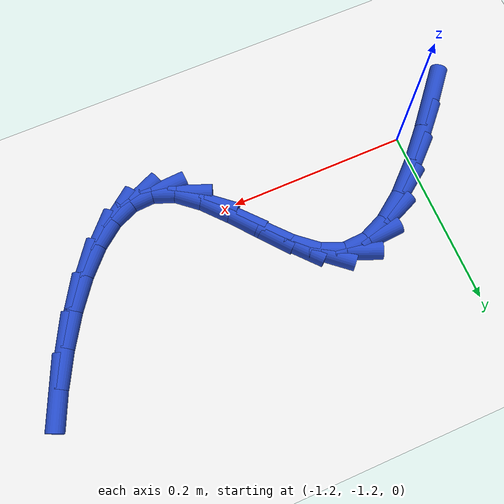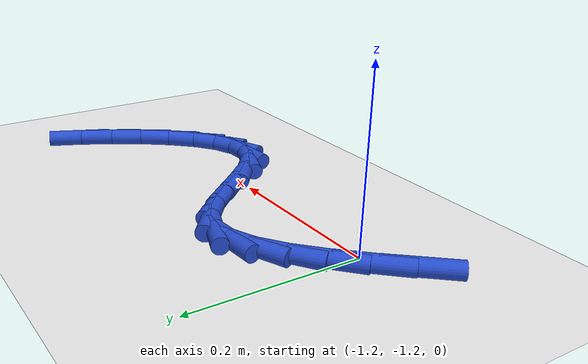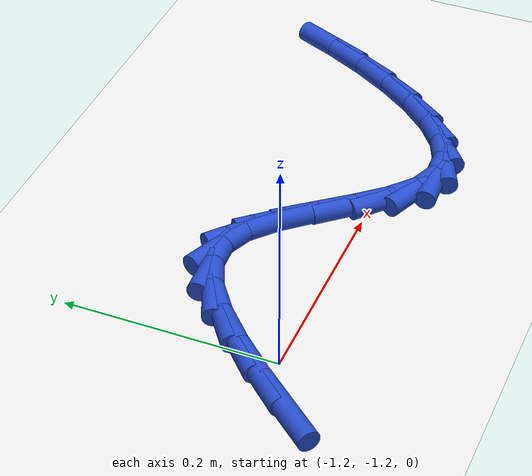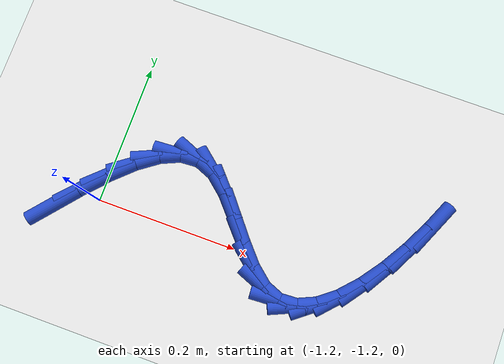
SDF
<sdf version="1.6">
 <world name="default">
  <model name="ground_plane">
   <static>1</static>
   <link name="link">
    <collision name="collision">
     <geometry><plane><normal>0 0 1</normal><size>100 100</size></plane></geometry>
     <surface><friction><ode><mu>100</mu><mu2>50</mu2></ode></friction></surface>
    </collision>
    <visual name="visual">
     <cast_shadows>0</cast_shadows>
     <geometry><plane><normal>0 0 1</normal><size>100 100</size></plane></geometry>
     <material>
      <script><uri>file://media/materials/scripts/gazebo.material</uri><name>Gazebo/WhiteGlow</name></script>
     </material>
    </visual>
   </link>
  </model>
  <model name="line">
   <link name="link_187">
    <pose>-1.2557655896012074 -1.2276968461485744 0.01 0 1.57 0.8730166356798045</pose>
    <collision name="collision">
     <geometry><cylinder><radius>0.01</radius><length>0.08</length></cylinder></geometry>
    </collision>
    <visual name="visual">
     <material>
      <script><name>Gazebo/Blue</name><uri>file://media/materials/scripts/gazebo.material</uri></script>
     </material>
     <geometry><cylinder><radius>0.01</radius><length>0.08</length></cylinder></geometry>
    </visual>
   </link>
   <link name="link_188">
    <pose>-1.2271237112216244 -1.1935383726911895 0.01 0 1.57 0.831199033700139</pose>
    <collision name="collision">
     <geometry><cylinder><radius>0.01</radius><length>0.08</length></cylinder></geometry>
    </collision>
    <visual name="visual">
     <material>
      <script><name>Gazebo/Blue</name><uri>file://media/materials/scripts/gazebo.material</uri></script>
     </material>
     <geometry><cylinder><radius>0.01</radius><length>0.08</length></cylinder></geometry>
    </visual>
   </link>
   <link name="link_189">
    <pose>-1.1983691687812712 -1.1620214110453029 0.01 0 1.57 0.7556224815977594</pose>
    <collision name="collision">
     <geometry><cylinder><radius>0.01</radius><length>0.08</length></cylinder></geometry>
    </collision>
    <visual name="visual">
     <material>
      <script><name>Gazebo/Blue</name><uri>file://media/materials/scripts/gazebo.material</uri></script>
     </material>
     <geometry><cylinder><radius>0.01</radius><length>0.08</length></cylinder></geometry>
    </visual>
   </link>
   <link name="link_190">
    <pose>-1.1697662785064162 -1.1350730851108615 0.01 0 1.57 0.6277045178378027</pose>
    <collision name="collision">
     <geometry><cylinder><radius>0.01</radius><length>0.08</length></cylinder></geometry>
    </collision>
    <visual name="visual">
     <material>
      <script><name>Gazebo/Blue</name><uri>file://media/materials/scripts/gazebo.material</uri></script>
     </material>
     <geometry><cylinder><radius>0.01</radius><length>0.08</length></cylinder></geometry>
    </visual>
   </link>
   <link name="link_191">
    <pose>-1.1415793566233277 -1.1146205187878109 0.01 0 1.57 0.4122740045180698</pose>
    <collision name="collision">
     <geometry><cylinder><radius>0.01</radius><length>0.08</length></cylinder></geometry>
    </collision>
    <visual name="visual">
     <material>
      <script><name>Gazebo/Blue</name><uri>file://media/materials/scripts/gazebo.material</uri></script>
     </material>
     <geometry><cylinder><radius>0.01</radius><length>0.08</length></cylinder></geometry>
    </visual>
   </link>
   <link name="link_192">
    <pose>-1.1140727193582745 -1.1025908359760979 0.01 0 1.57 0.06315185491303896</pose>
    <collision name="collision">
     <geometry><cylinder><radius>0.01</radius><length>0.08</length></cylinder></geometry>
    </collision>
    <visual name="visual">
     <material>
      <script><name>Gazebo/Blue</name><uri>file://media/materials/scripts/gazebo.material</uri></script>
     </material>
     <geometry><cylinder><radius>0.01</radius><length>0.08</length></cylinder></geometry>
    </visual>
   </link>
   <link name="link_193">
    <pose>-1.0875106829375256 -1.1009111605756694 0.01 0 1.57 -0.3871954931710761</pose>
    <collision name="collision">
     <geometry><cylinder><radius>0.01</radius><length>0.08</length></cylinder></geometry>
    </collision>
    <visual name="visual">
     <material>
      <script><name>Gazebo/Blue</name><uri>file://media/materials/scripts/gazebo.material</uri></script>
     </material>
     <geometry><cylinder><radius>0.01</radius><length>0.08</length></cylinder></geometry>
    </visual>
   </link>
   <link name="link_194">
    <pose>-1.0621319540510896 -1.1112601064582175 0.01 0 1.57 -0.704779340631886</pose>
    <collision name="collision">
     <geometry><cylinder><radius>0.01</radius><length>0.08</length></cylinder></geometry>
    </collision>
    <visual name="visual">
     <material>
      <script><name>Gazebo/Blue</name><uri>file://media/materials/scripts/gazebo.material</uri></script>
     </material>
     <geometry><cylinder><radius>0.01</radius><length>0.08</length></cylinder></geometry>
    </visual>
   </link>
   <link name="link_195">
    <pose>-1.0378264527559897 -1.1319317289019815 0.01 0 1.57 -0.8497348156527421</pose>
    <collision name="collision">
     <geometry><cylinder><radius>0.01</radius><length>0.08</length></cylinder></geometry>
    </collision>
    <visual name="visual">
     <material>
      <script><name>Gazebo/Blue</name><uri>file://media/materials/scripts/gazebo.material</uri></script>
     </material>
     <geometry><cylinder><radius>0.01</radius><length>0.08</length></cylinder></geometry>
    </visual>
   </link>
   <link name="link_196">
    <pose>-1.0142321793407136 -1.1587755020665271 0.01 0 1.57 -0.8918007354624372</pose>
    <collision name="collision">
     <geometry><cylinder><radius>0.01</radius><length>0.08</length></cylinder></geometry>
    </collision>
    <visual name="visual">
     <material>
      <script><name>Gazebo/Blue</name><uri>file://media/materials/scripts/gazebo.material</uri></script>
     </material>
     <geometry><cylinder><radius>0.01</radius><length>0.08</length></cylinder></geometry>
    </visual>
   </link>
   <link name="link_197">
    <pose>-0.9909815430755511 -1.1875866459431 0.01 0 1.57 -0.8514854459162908</pose>
    <collision name="collision">
     <geometry><cylinder><radius>0.01</radius><length>0.08</length></cylinder></geometry>
    </collision>
    <visual name="visual">
     <material>
      <script><name>Gazebo/Blue</name><uri>file://media/materials/scripts/gazebo.material</uri></script>
     </material>
     <geometry><cylinder><radius>0.01</radius><length>0.08</length></cylinder></geometry>
    </visual>
   </link>
   <link name="link_198">
    <pose>-0.9677069532307909 -1.2141603805229457 0.01 0 1.57 -0.7048700332051223</pose>
    <collision name="collision">
     <geometry><cylinder><radius>0.01</radius><length>0.08</length></cylinder></geometry>
    </collision>
    <visual name="visual">
     <material>
      <script><name>Gazebo/Blue</name><uri>file://media/materials/scripts/gazebo.material</uri></script>
     </material>
     <geometry><cylinder><radius>0.01</radius><length>0.08</length></cylinder></geometry>
    </visual>
   </link>
   <link name="link_199">
    <pose>-0.9440408190767222 -1.234291925797309 0.01 0 1.57 -0.38018458107672337</pose>
    <collision name="collision">
     <geometry><cylinder><radius>0.01</radius><length>0.08</length></cylinder></geometry>
    </collision>
    <visual name="visual">
     <material>
      <script><name>Gazebo/Blue</name><uri>file://media/materials/scripts/gazebo.material</uri></script>
     </material>
     <geometry><cylinder><radius>0.01</radius><length>0.08</length></cylinder></geometry>
    </visual>
   </link>
   <link name="link_200">
    <pose>-0.9196523574689253 -1.244038207803888 0.01 0 1.57 0.05534752964600647</pose>
    <collision name="collision">
     <geometry><cylinder><radius>0.01</radius><length>0.08</length></cylinder></geometry>
    </collision>
    <visual name="visual">
     <material>
      <script><name>Gazebo/Blue</name><uri>file://media/materials/scripts/gazebo.material</uri></script>
     </material>
     <geometry><cylinder><radius>0.01</radius><length>0.08</length></cylinder></geometry>
    </visual>
   </link>
   <link name="link_201">
    <pose>-0.8946604831905707 -1.2426535551210358 0.01 0 1.57 0.4160059773773739</pose>
    <collision name="collision">
     <geometry><cylinder><radius>0.01</radius><length>0.08</length></cylinder></geometry>
    </collision>
    <visual name="visual">
     <material>
      <script><name>Gazebo/Blue</name><uri>file://media/materials/scripts/gazebo.material</uri></script>
     </material>
     <geometry><cylinder><radius>0.01</radius><length>0.08</length></cylinder></geometry>
    </visual>
   </link>
   <link name="link_202">
    <pose>-0.8694849422562931 -1.2315312400152674 0.01 0 1.57 0.6619024191560893</pose>
    <collision name="collision">
     <geometry><cylinder><radius>0.01</radius><length>0.08</length></cylinder></geometry>
    </collision>
    <visual name="visual">
     <material>
      <script><name>Gazebo/Blue</name><uri>file://media/materials/scripts/gazebo.material</uri></script>
     </material>
     <geometry><cylinder><radius>0.01</radius><length>0.08</length></cylinder></geometry>
    </visual>
   </link>
   <link name="link_203">
    <pose>-0.8445509981181731 -1.2121037643501695 0.01 0 1.57 0.8255814317530901</pose>
    <collision name="collision">
     <geometry><cylinder><radius>0.01</radius><length>0.08</length></cylinder></geometry>
    </collision>
    <visual name="visual">
     <material>
      <script><name>Gazebo/Blue</name><uri>file://media/materials/scripts/gazebo.material</uri></script>
     </material>
     <geometry><cylinder><radius>0.01</radius><length>0.08</length></cylinder></geometry>
    </visual>
   </link>
   <link name="link_204">
    <pose>-0.8202839142282903 -1.185803629989328 0.01 0 1.57 0.9401251087404174</pose>
    <collision name="collision">
     <geometry><cylinder><radius>0.01</radius><length>0.08</length></cylinder></geometry>
    </collision>
    <visual name="visual">
     <material>
      <script><name>Gazebo/Blue</name><uri>file://media/materials/scripts/gazebo.material</uri></script>
     </material>
     <geometry><cylinder><radius>0.01</radius><length>0.08</length></cylinder></geometry>
    </visual>
   </link>
   <link name="link_205">
    <pose>-0.797108954038724 -1.1540633387963297 0.01 0 1.57 1.0260930063291318</pose>
    <collision name="collision">
     <geometry><cylinder><radius>0.01</radius><length>0.08</length></cylinder></geometry>
    </collision>
    <visual name="visual">
     <material>
      <script><name>Gazebo/Blue</name><uri>file://media/materials/scripts/gazebo.material</uri></script>
     </material>
     <geometry><cylinder><radius>0.01</radius><length>0.08</length></cylinder></geometry>
    </visual>
   </link>
   <link name="link_206">
    <pose>-0.7754513810015548 -1.1183153926347613 0.01 0 1.57 1.0956638271411263</pose>
    <collision name="collision">
     <geometry><cylinder><radius>0.01</radius><length>0.08</length></cylinder></geometry>
    </collision>
    <visual name="visual">
     <material>
      <script><name>Gazebo/Blue</name><uri>file://media/materials/scripts/gazebo.material</uri></script>
     </material>
     <geometry><cylinder><radius>0.01</radius><length>0.08</length></cylinder></geometry>
    </visual>
   </link>
   <link name="link_207">
    <pose>-0.7557364585688624 -1.0799922933682096 0.01 0 1.57 1.156669971155247</pose>
    <collision name="collision">
     <geometry><cylinder><radius>0.01</radius><length>0.08</length></cylinder></geometry>
    </collision>
    <visual name="visual">
     <material>
      <script><name>Gazebo/Blue</name><uri>file://media/materials/scripts/gazebo.material</uri></script>
     </material>
     <geometry><cylinder><radius>0.01</radius><length>0.08</length></cylinder></geometry>
    </visual>
   </link>
  </model>
 </world>
</sdf>
